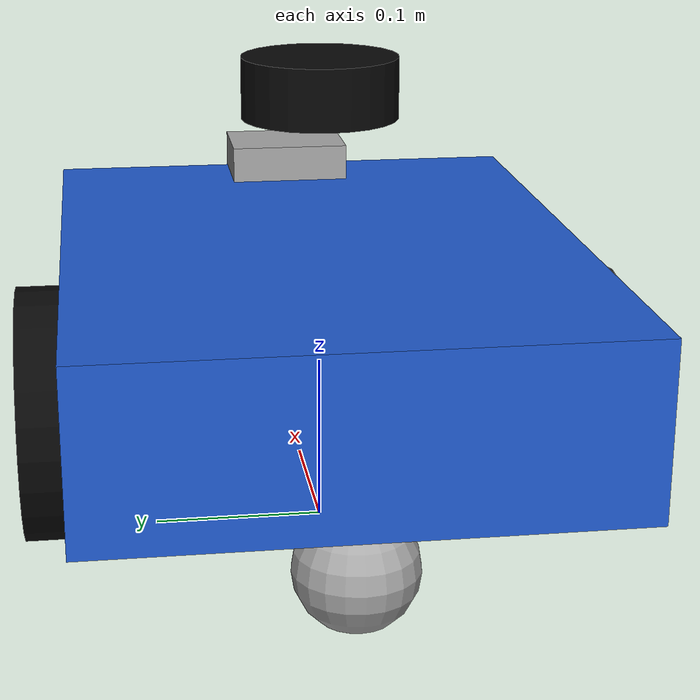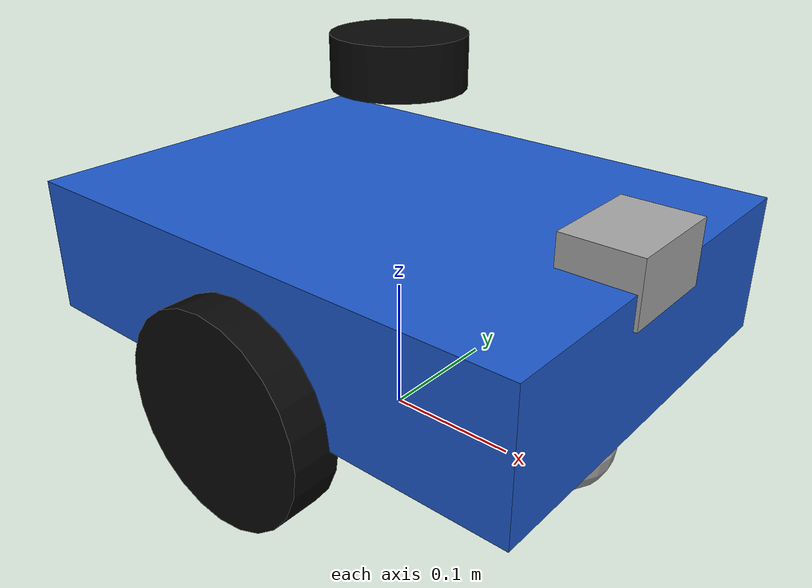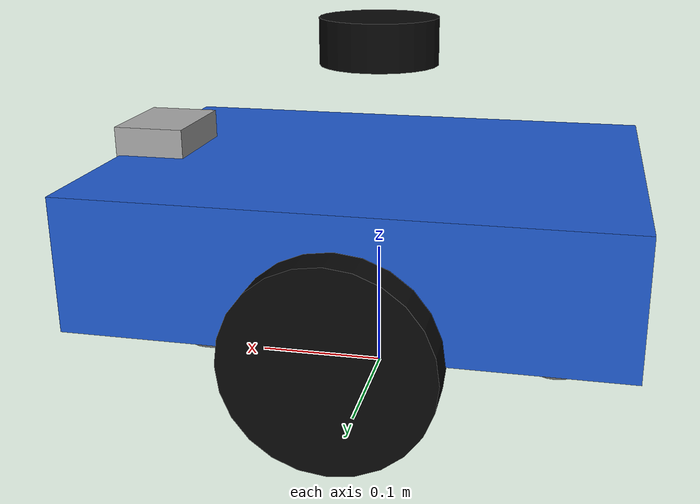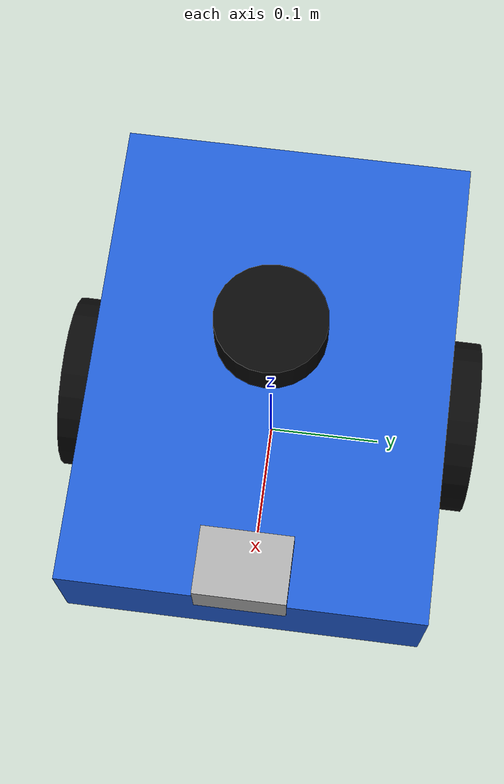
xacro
<?xml version="1.0"?>
<robot name="simple_diff_robot" xmlns:xacro="http://www.ros.org/wiki/xacro">
  <xacro:arg name="camera_pitch" default="0.0"/>

  <!-- All dimensions are in metres and kilograms. -->
  <xacro:property name="base_length" value="0.40"/>
  <xacro:property name="base_width" value="0.30"/>
  <xacro:property name="base_height" value="0.10"/>
  <xacro:property name="base_mass" value="5.0"/>

  <xacro:property name="wheel_radius" value="0.075"/>
  <xacro:property name="wheel_width" value="0.035"/>
  <xacro:property name="wheel_separation" value="0.32"/>
  <xacro:property name="wheel_mass" value="0.35"/>

  <xacro:property name="caster_radius" value="0.035"/>
  <xacro:property name="caster_x" value="0.145"/>
  <xacro:property name="caster_mass" value="0.08"/>

  <material name="blue"><color rgba="0.12 0.35 0.80 1"/></material>
  <material name="black"><color rgba="0.03 0.03 0.03 1"/></material>
  <material name="silver"><color rgba="0.65 0.65 0.65 1"/></material>

  <link name="base_footprint"/>

  <joint name="base_footprint_joint" type="fixed">
    <parent link="base_footprint"/>
    <child link="base_link"/>
    <origin xyz="0 0 ${wheel_radius}" rpy="0 0 0"/>
  </joint>

  <link name="base_link">
    <visual>
      <origin xyz="0 0 ${base_height / 2.0}"/>
      <geometry><box size="${base_length} ${base_width} ${base_height}"/></geometry>
      <material name="blue"/>
    </visual>
    <collision>
      <origin xyz="0 0 ${base_height / 2.0}"/>
      <geometry><box size="${base_length} ${base_width} ${base_height}"/></geometry>
    </collision>
    <inertial>
      <origin xyz="0 0 ${base_height / 2.0}"/>
      <mass value="${base_mass}"/>
      <inertia
        ixx="${base_mass * (base_width * base_width + base_height * base_height) / 12.0}"
        ixy="0" ixz="0"
        iyy="${base_mass * (base_length * base_length + base_height * base_height) / 12.0}"
        iyz="0"
        izz="${base_mass * (base_length * base_length + base_width * base_width) / 12.0}"/>
    </inertial>
  </link>

  <xacro:macro name="drive_wheel" params="side y">
    <link name="${side}_wheel_link">
      <visual>
        <geometry><cylinder radius="${wheel_radius}" length="${wheel_width}"/></geometry>
        <material name="black"/>
      </visual>
      <collision>
        <geometry><cylinder radius="${wheel_radius}" length="${wheel_width}"/></geometry>
      </collision>
      <inertial>
        <mass value="${wheel_mass}"/>
        <inertia
          ixx="${wheel_mass * (3.0 * wheel_radius * wheel_radius + wheel_width * wheel_width) / 12.0}"
          ixy="0" ixz="0"
          iyy="${wheel_mass * (3.0 * wheel_radius * wheel_radius + wheel_width * wheel_width) / 12.0}"
          iyz="0"
          izz="${wheel_mass * wheel_radius * wheel_radius / 2.0}"/>
      </inertial>
    </link>
    <joint name="${side}_wheel_joint" type="continuous">
      <parent link="base_link"/>
      <child link="${side}_wheel_link"/>
      <origin xyz="0 ${y} 0" rpy="${pi / 2.0} 0 0"/>
      <axis xyz="0 0 -1"/>
      <dynamics damping="0.05" friction="0.0"/>
    </joint>
  </xacro:macro>

  <xacro:drive_wheel side="left" y="${wheel_separation / 2.0}"/>
  <xacro:drive_wheel side="right" y="${-wheel_separation / 2.0}"/>

  <!-- A sphere gives a simple omnidirectional support contact. -->
  <link name="caster_link">
    <visual>
      <geometry><sphere radius="${caster_radius}"/></geometry>
      <material name="silver"/>
    </visual>
    <collision>
      <geometry><sphere radius="${caster_radius}"/></geometry>
    </collision>
    <inertial>
      <mass value="${caster_mass}"/>
      <inertia ixx="${0.4 * caster_mass * caster_radius * caster_radius}" ixy="0" ixz="0"
               iyy="${0.4 * caster_mass * caster_radius * caster_radius}" iyz="0"
               izz="${0.4 * caster_mass * caster_radius * caster_radius}"/>
    </inertial>
  </link>
  <joint name="caster_joint" type="fixed">
    <parent link="base_link"/>
    <child link="caster_link"/>
    <origin xyz="${caster_x} 0 ${caster_radius - wheel_radius}"/>
  </joint>

  <link name="caster_link2">
    <visual>
      <geometry><sphere radius="${caster_radius}"/></geometry>
      <material name="silver"/>
    </visual>
    <collision>
      <geometry><sphere radius="${caster_radius}"/></geometry>
    </collision>
    <inertial>
      <mass value="${caster_mass}"/>
      <inertia ixx="${0.4 * caster_mass * caster_radius * caster_radius}" ixy="0" ixz="0"
               iyy="${0.4 * caster_mass * caster_radius * caster_radius}" iyz="0"
               izz="${0.4 * caster_mass * caster_radius * caster_radius}"/>
    </inertial>
  </link>
  <joint name="caster_joint2" type="fixed">
    <parent link="base_link"/>
    <child link="caster_link2"/>
    <origin xyz="${-caster_x} 0 ${caster_radius - wheel_radius}"/>
  </joint>

  <!-- 2D lidar, mounted above the chassis. -->
  <link name="laser_link">
    <visual><geometry><cylinder radius="0.045" length="0.035"/></geometry><material name="black"/></visual>
    <collision><geometry><cylinder radius="0.045" length="0.035"/></geometry></collision>
    <inertial><mass value="0.12"/><inertia ixx="0.00005" ixy="0" ixz="0" iyy="0.00005" iyz="0" izz="0.00012"/></inertial>
  </link>
  <joint name="laser_joint" type="fixed">
    <parent link="base_link"/><child link="laser_link"/>
    <origin xyz="0 0 ${base_height + 0.09}"/>
  </joint>

  <!-- RGB camera; optical frame follows the ROS camera convention. -->
  <link name="camera_link">
    <visual><geometry><box size="0.055 0.075 0.045"/></geometry><material name="silver"/></visual>
    <collision><geometry><box size="0.055 0.075 0.045"/></geometry></collision>
    <inertial><mass value="0.10"/><inertia ixx="0.00006" ixy="0" ixz="0" iyy="0.00004" iyz="0" izz="0.00006"/></inertial>
  </link>
  <joint name="camera_joint" type="fixed">
    <parent link="base_link"/><child link="camera_link"/>
    <origin xyz="${base_length / 2.0 - 0.025} 0 ${base_height}" rpy="0 $(arg camera_pitch) 0"/>
  </joint>
  <link name="camera_optical_frame"/>
  <joint name="camera_optical_joint" type="fixed">
    <parent link="camera_link"/><child link="camera_optical_frame"/>
    <origin xyz="0.03 0 0" rpy="${-pi / 2.0} 0 ${-pi / 2.0}"/>
  </joint>

  <gazebo reference="base_link"><material>Gazebo/Blue</material></gazebo>
  <gazebo reference="left_wheel_link">
    <material>Gazebo/Black</material><mu1>1.0</mu1><mu2>1.0</mu2>
  </gazebo>
  <gazebo reference="right_wheel_link">
    <material>Gazebo/Black</material><mu1>1.0</mu1><mu2>1.0</mu2>
  </gazebo>
  <gazebo reference="caster_link">
    <material>Gazebo/Grey</material>
    <mu1>0.001</mu1><mu2>0.001</mu2>
  </gazebo>
  <gazebo reference="caster_link2">
    <material>Gazebo/Grey</material>
    <mu1>0.001</mu1>
    <mu2>0.001</mu2>
  </gazebo>
  <gazebo reference="laser_link">
    <sensor type="ray" name="lidar">
      <visualize>false</visualize>
      <update_rate>10</update_rate>
      <ray>
        <scan><horizontal><samples>720</samples><resolution>1</resolution><min_angle>-3.14159</min_angle><max_angle>3.14159</max_angle></horizontal></scan>
        <range><min>0.12</min><max>12.0</max><resolution>0.01</resolution></range>
        <noise><type>gaussian</type><mean>0.0</mean><stddev>0.005</stddev></noise>
      </ray>
      <plugin name="gazebo_ros_lidar" filename="libgazebo_ros_laser.so">
        <topicName>scan</topicName><frameName>laser_link</frameName>
      </plugin>
    </sensor>
  </gazebo>

  <gazebo reference="camera_link">
    <sensor type="camera" name="rgb_camera">
      <update_rate>20</update_rate>
      <visualize>false</visualize>
      <camera name="head">
        <horizontal_fov>1.047</horizontal_fov>
        <image><width>640</width><height>480</height><format>R8G8B8</format></image>
        <clip><near>0.05</near><far>30.0</far></clip>
      </camera>
      <plugin name="gazebo_ros_camera" filename="libgazebo_ros_camera.so">
        <cameraName>camera</cameraName><imageTopicName>image_raw</imageTopicName>
        <cameraInfoTopicName>camera_info</cameraInfoTopicName><frameName>camera_optical_frame</frameName>
      </plugin>
    </sensor>
  </gazebo>

  <gazebo>
    <plugin name="differential_drive" filename="libgazebo_ros_diff_drive.so">
      <legacyMode>false</legacyMode>
      <alwaysOn>true</alwaysOn>
      <updateRate>50</updateRate>
      <leftJoint>left_wheel_joint</leftJoint>
      <rightJoint>right_wheel_joint</rightJoint>
      <wheelSeparation>${wheel_separation}</wheelSeparation>
      <wheelDiameter>${2.0 * wheel_radius}</wheelDiameter>
      <wheelAcceleration>1.5</wheelAcceleration>
      <wheelTorque>8</wheelTorque>
      <commandTopic>cmd_vel</commandTopic>
      <odometryTopic>odom</odometryTopic>
      <odometryFrame>odom</odometryFrame>
      <robotBaseFrame>base_footprint</robotBaseFrame>
      <odometrySource>world</odometrySource>
      <publishOdomTF>true</publishOdomTF>
      <publishWheelTF>false</publishWheelTF>
      <publishWheelJointState>true</publishWheelJointState>
    </plugin>
  </gazebo>
</robot>
